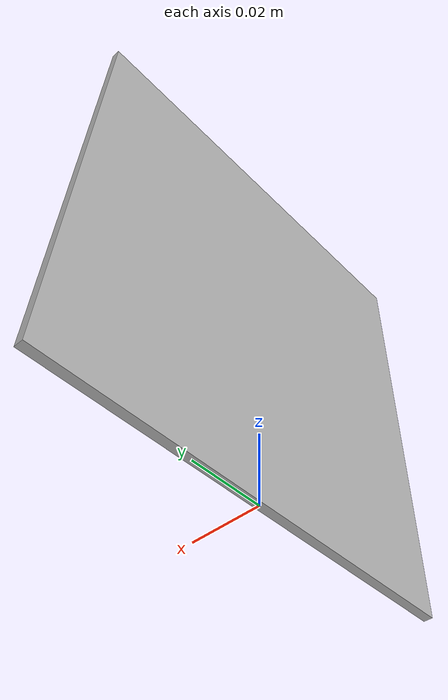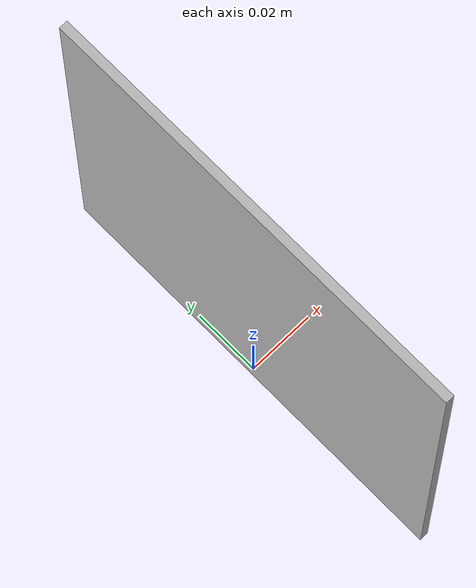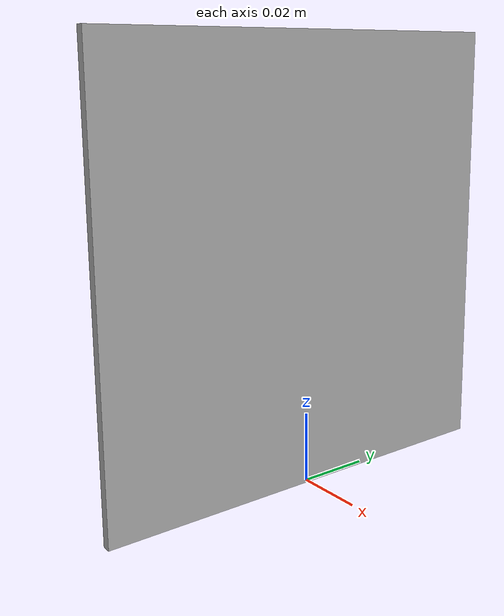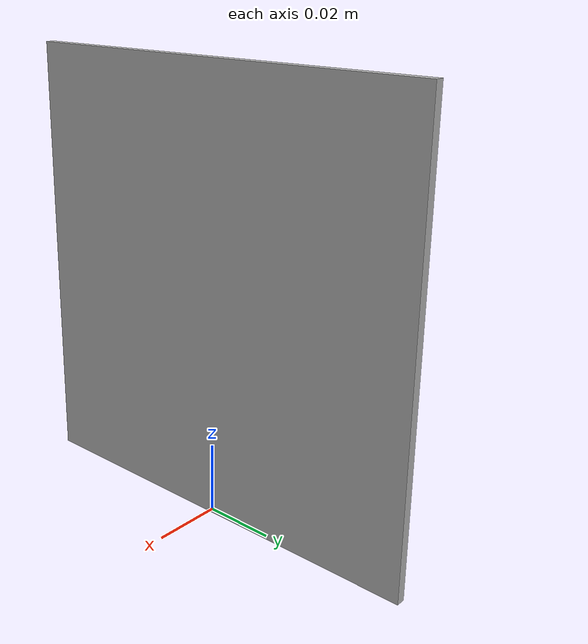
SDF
<?xml version="1.0" ?>
<sdf version="1.4">
  <model name="Marker0">
    <static>true</static>
    <link name="link">
      <visual name="visual">
        <geometry>
          <mesh>
            <uri>model://marker0/meshes/Marker0.dae</uri>
            <scale>0.5 0.5 0.5</scale>
          </mesh>
        </geometry>
      </visual>
    </link>
  </model>
</sdf>
